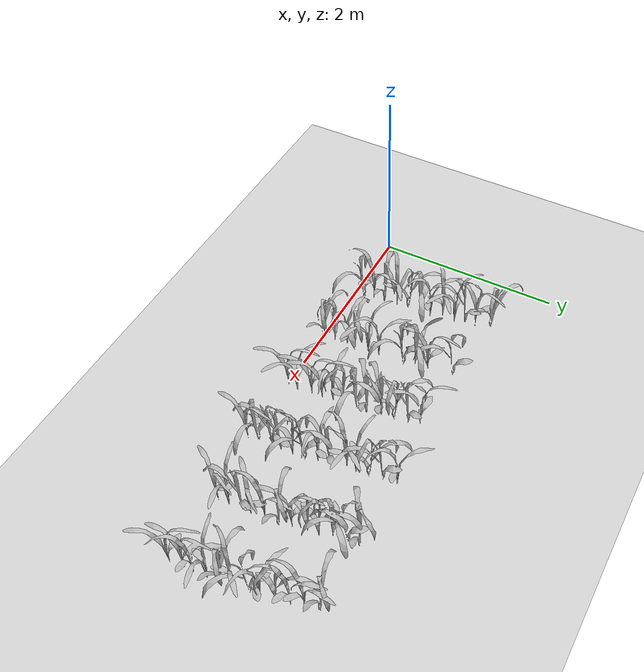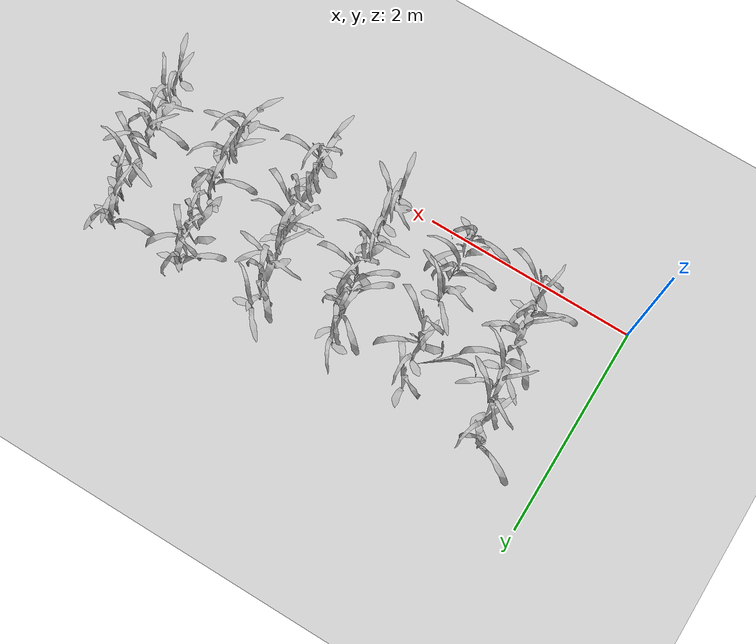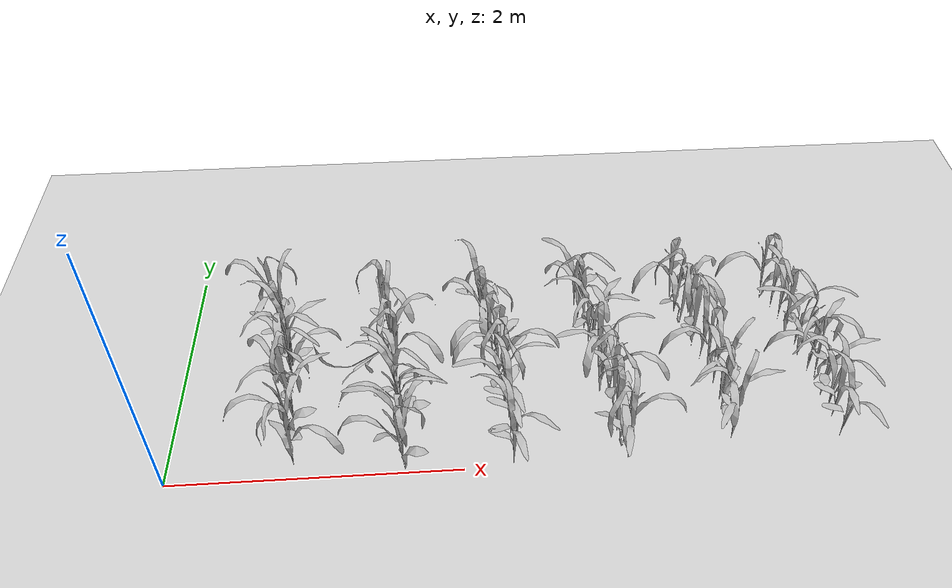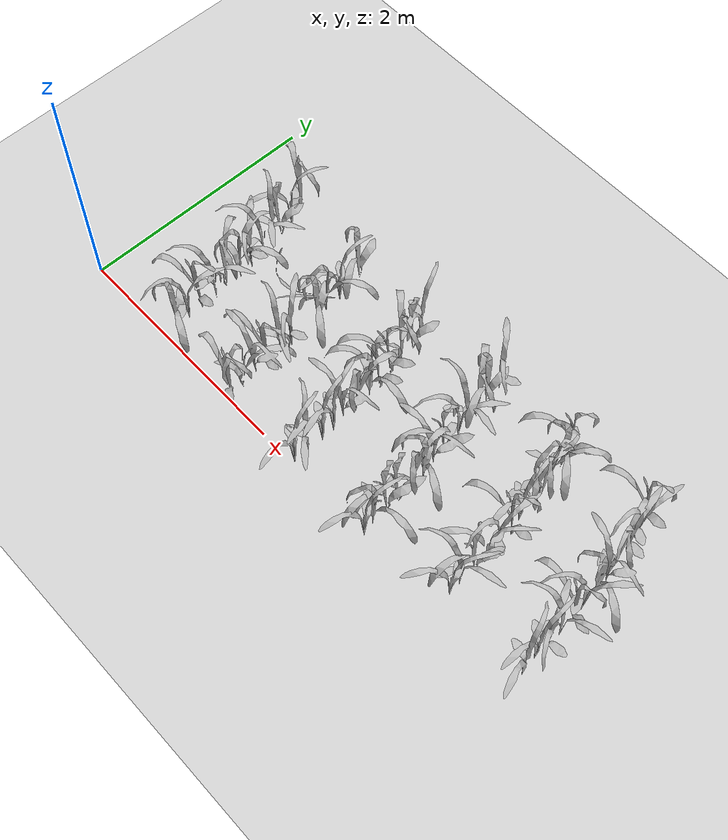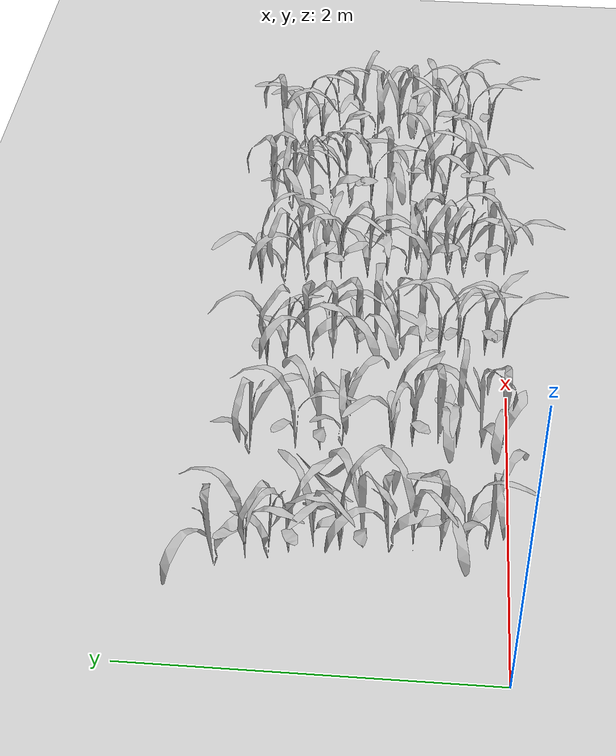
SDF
<sdf version="1.7">
 <world name="default">
  <model name="maize_01_0439">
   <pose>0.85108 0.110693 -1e-06 8.6e-05 -6e-06 0.346465</pose>
   <link name="maize_01_link">
    <inertial>
     <pose>0 0 0.01 0 -0 0</pose>
     <mass>0.3</mass>
     <inertia>
      <ixx>0.00334167</ixx>
      <ixy>0</ixy>
      <ixz>0</ixz>
      <iyy>0.00334167</iyy>
      <iyz>0</iyz>
      <izz>1.66667e-05</izz>
     </inertia>
     <pose>0 0 0.1 0 -0 0</pose>
    </inertial>
    <visual name="visual">
     <geometry>
      <mesh><uri>model://maize_01/meshes/maize_01.dae</uri><scale>0.683166 0.683166 0.683166</scale></mesh>
     </geometry>
    </visual>
   </link>
   <static>0</static>
  </model>
  <model name="maize_02_0440">
   <pose>0.831975 0.232894 -1e-06 8.6e-05 6e-06 -2.7977</pose>
   <link name="maize_02_link">
    <inertial>
     <pose>0 0 0.01 0 -0 0</pose>
     <mass>0.3</mass>
     <inertia>
      <ixx>0.00334167</ixx>
      <ixy>0</ixy>
      <ixz>0</ixz>
      <iyy>0.00334167</iyy>
      <iyz>0</iyz>
      <izz>1.66667e-05</izz>
     </inertia>
     <pose>0 0 0.1 0 -0 0</pose>
    </inertial>
    <visual name="visual">
     <geometry>
      <mesh><uri>model://maize_02/meshes/maize_02.dae</uri><scale>0.683166 0.683166 0.683166</scale></mesh>
     </geometry>
    </visual>
   </link>
   <static>0</static>
  </model>
  <model name="maize_01_0441">
   <pose>0.824122 0.368339 -0 -5e-06 -2.8e-05 -2.05895</pose>
   <link name="maize_01_link">
    <inertial>
     <pose>0 0 0.01 0 -0 0</pose>
     <mass>0.3</mass>
     <inertia>
      <ixx>0.00334167</ixx>
      <ixy>0</ixy>
      <ixz>0</ixz>
      <iyy>0.00334167</iyy>
      <iyz>0</iyz>
      <izz>1.66667e-05</izz>
     </inertia>
     <pose>0 0 0.1 0 -0 0</pose>
    </inertial>
    <visual name="visual">
     <geometry>
      <mesh><uri>model://maize_01/meshes/maize_01.dae</uri><scale>0.683166 0.683166 0.683166</scale></mesh>
     </geometry>
    </visual>
   </link>
   <static>0</static>
  </model>
  <model name="maize_02_0442">
   <pose>0.81968 0.512315 1e-06 0.000156 -3e-06 2.75109</pose>
   <link name="maize_02_link">
    <inertial>
     <pose>0 0 0.01 0 -0 0</pose>
     <mass>0.3</mass>
     <inertia>
      <ixx>0.00334167</ixx>
      <ixy>0</ixy>
      <ixz>0</ixz>
      <iyy>0.00334167</iyy>
      <iyz>0</iyz>
      <izz>1.66667e-05</izz>
     </inertia>
     <pose>0 0 0.1 0 -0 0</pose>
    </inertial>
    <visual name="visual">
     <geometry>
      <mesh><uri>model://maize_02/meshes/maize_02.dae</uri><scale>0.683166 0.683166 0.683166</scale></mesh>
     </geometry>
    </visual>
   </link>
   <static>0</static>
  </model>
  <model name="maize_01_0443">
   <pose>0.791409 0.642572 -0 -5e-06 2.8e-05 3.05494</pose>
   <link name="maize_01_link">
    <inertial>
     <pose>0 0 0.01 0 -0 0</pose>
     <mass>0.3</mass>
     <inertia>
      <ixx>0.00334167</ixx>
      <ixy>0</ixy>
      <ixz>0</ixz>
      <iyy>0.00334167</iyy>
      <iyz>0</iyz>
      <izz>1.66667e-05</izz>
     </inertia>
     <pose>0 0 0.1 0 -0 0</pose>
    </inertial>
    <visual name="visual">
     <geometry>
      <mesh><uri>model://maize_01/meshes/maize_01.dae</uri><scale>0.683166 0.683166 0.683166</scale></mesh>
     </geometry>
    </visual>
   </link>
   <static>0</static>
  </model>
  <model name="maize_01_0444">
   <pose>0.793869 0.779367 -0 6e-06 4.8e-05 1.27213</pose>
   <link name="maize_01_link">
    <inertial>
     <pose>0 0 0.01 0 -0 0</pose>
     <mass>0.3</mass>
     <inertia>
      <ixx>0.00334167</ixx>
      <ixy>0</ixy>
      <ixz>0</ixz>
      <iyy>0.00334167</iyy>
      <iyz>0</iyz>
      <izz>1.66667e-05</izz>
     </inertia>
     <pose>0 0 0.1 0 -0 0</pose>
    </inertial>
    <visual name="visual">
     <geometry>
      <mesh><uri>model://maize_01/meshes/maize_01.dae</uri><scale>0.683166 0.683166 0.683166</scale></mesh>
     </geometry>
    </visual>
   </link>
   <static>0</static>
  </model>
  <model name="maize_02_0445">
   <pose>0.785643 0.903754 -0 5e-06 2.8e-05 -1.7164</pose>
   <link name="maize_02_link">
    <inertial>
     <pose>0 0 0.01 0 -0 0</pose>
     <mass>0.3</mass>
     <inertia>
      <ixx>0.00334167</ixx>
      <ixy>0</ixy>
      <ixz>0</ixz>
      <iyy>0.00334167</iyy>
      <iyz>0</iyz>
      <izz>1.66667e-05</izz>
     </inertia>
     <pose>0 0 0.1 0 -0 0</pose>
    </inertial>
    <visual name="visual">
     <geometry>
      <mesh><uri>model://maize_02/meshes/maize_02.dae</uri><scale>0.683166 0.683166 0.683166</scale></mesh>
     </geometry>
    </visual>
   </link>
   <static>0</static>
  </model>
  <model name="maize_02_0446">
   <pose>0.771052 1.0424 1e-06 3e-06 -0.000156 2.81163</pose>
   <link name="maize_02_link">
    <inertial>
     <pose>0 0 0.01 0 -0 0</pose>
     <mass>0.3</mass>
     <inertia>
      <ixx>0.00334167</ixx>
      <ixy>0</ixy>
      <ixz>0</ixz>
      <iyy>0.00334167</iyy>
      <iyz>0</iyz>
      <izz>1.66667e-05</izz>
     </inertia>
     <pose>0 0 0.1 0 -0 0</pose>
    </inertial>
    <visual name="visual">
     <geometry>
      <mesh><uri>model://maize_02/meshes/maize_02.dae</uri><scale>0.683166 0.683166 0.683166</scale></mesh>
     </geometry>
    </visual>
   </link>
   <static>0</static>
  </model>
  <model name="maize_02_0447">
   <pose>0.744276 1.1742 -0 -5e-06 -2.8e-05 1.54238</pose>
   <link name="maize_02_link">
    <inertial>
     <pose>0 0 0.01 0 -0 0</pose>
     <mass>0.3</mass>
     <inertia>
      <ixx>0.00334167</ixx>
      <ixy>0</ixy>
      <ixz>0</ixz>
      <iyy>0.00334167</iyy>
      <iyz>0</iyz>
      <izz>1.66667e-05</izz>
     </inertia>
     <pose>0 0 0.1 0 -0 0</pose>
    </inertial>
    <visual name="visual">
     <geometry>
      <mesh><uri>model://maize_02/meshes/maize_02.dae</uri><scale>0.683166 0.683166 0.683166</scale></mesh>
     </geometry>
    </visual>
   </link>
   <static>0</static>
  </model>
  <model name="maize_01_0448">
   <pose>0.701226 1.28164 -1e-06 -6e-06 8.3e-05 -0.66469</pose>
   <link name="maize_01_link">
    <inertial>
     <pose>0 0 0.01 0 -0 0</pose>
     <mass>0.3</mass>
     <inertia>
      <ixx>0.00334167</ixx>
      <ixy>0</ixy>
      <ixz>0</ixz>
      <iyy>0.00334167</iyy>
      <iyz>0</iyz>
      <izz>1.66667e-05</izz>
     </inertia>
     <pose>0 0 0.1 0 -0 0</pose>
    </inertial>
    <visual name="visual">
     <geometry>
      <mesh><uri>model://maize_01/meshes/maize_01.dae</uri><scale>0.683166 0.683166 0.683166</scale></mesh>
     </geometry>
    </visual>
   </link>
   <static>0</static>
  </model>
  <model name="maize_02_0449">
   <pose>0.692328 1.40183 -0 -2.8e-05 -5e-06 0.265089</pose>
   <link name="maize_02_link">
    <inertial>
     <pose>0 0 0.01 0 -0 0</pose>
     <mass>0.3</mass>
     <inertia>
      <ixx>0.00334167</ixx>
      <ixy>0</ixy>
      <ixz>0</ixz>
      <iyy>0.00334167</iyy>
      <iyz>0</iyz>
      <izz>1.66667e-05</izz>
     </inertia>
     <pose>0 0 0.1 0 -0 0</pose>
    </inertial>
    <visual name="visual">
     <geometry>
      <mesh><uri>model://maize_02/meshes/maize_02.dae</uri><scale>0.683166 0.683166 0.683166</scale></mesh>
     </geometry>
    </visual>
   </link>
   <static>0</static>
  </model>
  <model name="maize_01_0450">
   <pose>0.628987 1.5631 -0 -5e-06 -2.8e-05 -2.83313</pose>
   <link name="maize_01_link">
    <inertial>
     <pose>0 0 0.01 0 -0 0</pose>
     <mass>0.3</mass>
     <inertia>
      <ixx>0.00334167</ixx>
      <ixy>0</ixy>
      <ixz>0</ixz>
      <iyy>0.00334167</iyy>
      <iyz>0</iyz>
      <izz>1.66667e-05</izz>
     </inertia>
     <pose>0 0 0.1 0 -0 0</pose>
    </inertial>
    <visual name="visual">
     <geometry>
      <mesh><uri>model://maize_01/meshes/maize_01.dae</uri><scale>0.683166 0.683166 0.683166</scale></mesh>
     </geometry>
    </visual>
   </link>
   <static>0</static>
  </model>
  <model name="maize_01_0515">
   <pose>1.60195 0.029843 1e-06 3e-06 -0.000156 -2.51522</pose>
   <link name="maize_01_link">
    <inertial>
     <pose>0 0 0.01 0 -0 0</pose>
     <mass>0.3</mass>
     <inertia>
      <ixx>0.00334167</ixx>
      <ixy>0</ixy>
      <ixz>0</ixz>
      <iyy>0.00334167</iyy>
      <iyz>0</iyz>
      <izz>1.66667e-05</izz>
     </inertia>
     <pose>0 0 0.1 0 -0 0</pose>
    </inertial>
    <visual name="visual">
     <geometry>
      <mesh><uri>model://maize_01/meshes/maize_01.dae</uri><scale>0.683166 0.683166 0.683166</scale></mesh>
     </geometry>
    </visual>
   </link>
   <static>0</static>
  </model>
  <model name="maize_01_0516">
   <pose>1.58691 0.15042 -0 5e-06 2.8e-05 1.81864</pose>
   <link name="maize_01_link">
    <inertial>
     <pose>0 0 0.01 0 -0 0</pose>
     <mass>0.3</mass>
     <inertia>
      <ixx>0.00334167</ixx>
      <ixy>0</ixy>
      <ixz>0</ixz>
      <iyy>0.00334167</iyy>
      <iyz>0</iyz>
      <izz>1.66667e-05</izz>
     </inertia>
     <pose>0 0 0.1 0 -0 0</pose>
    </inertial>
    <visual name="visual">
     <geometry>
      <mesh><uri>model://maize_01/meshes/maize_01.dae</uri><scale>0.683166 0.683166 0.683166</scale></mesh>
     </geometry>
    </visual>
   </link>
   <static>0</static>
  </model>
  <model name="maize_02_0517">
   <pose>1.56805 0.29322 -0.000245 1.4e-05 -1.2e-05 -1.06941</pose>
   <link name="maize_02_link">
    <inertial>
     <pose>0 0 0.01 0 -0 0</pose>
     <mass>0.3</mass>
     <inertia>
      <ixx>0.00334167</ixx>
      <ixy>0</ixy>
      <ixz>0</ixz>
      <iyy>0.00334167</iyy>
      <iyz>0</iyz>
      <izz>1.66667e-05</izz>
     </inertia>
     <pose>0 0 0.1 0 -0 0</pose>
    </inertial>
    <visual name="visual">
     <geometry>
      <mesh><uri>model://maize_02/meshes/maize_02.dae</uri><scale>0.683166 0.683166 0.683166</scale></mesh>
     </geometry>
    </visual>
   </link>
   <static>0</static>
  </model>
  <model name="maize_01_0518">
   <pose>1.59159 0.398926 -0 -5e-06 2.8e-05 -2.21392</pose>
   <link name="maize_01_link">
    <inertial>
     <pose>0 0 0.01 0 -0 0</pose>
     <mass>0.3</mass>
     <inertia>
      <ixx>0.00334167</ixx>
      <ixy>0</ixy>
      <ixz>0</ixz>
      <iyy>0.00334167</iyy>
      <iyz>0</iyz>
      <izz>1.66667e-05</izz>
     </inertia>
     <pose>0 0 0.1 0 -0 0</pose>
    </inertial>
    <visual name="visual">
     <geometry>
      <mesh><uri>model://maize_01/meshes/maize_01.dae</uri><scale>0.683166 0.683166 0.683166</scale></mesh>
     </geometry>
    </visual>
   </link>
   <static>0</static>
  </model>
  <model name="maize_02_0519">
   <pose>1.56412 0.542915 -0.000245 -1.4e-05 -1.2e-05 1.73902</pose>
   <link name="maize_02_link">
    <inertial>
     <pose>0 0 0.01 0 -0 0</pose>
     <mass>0.3</mass>
     <inertia>
      <ixx>0.00334167</ixx>
      <ixy>0</ixy>
      <ixz>0</ixz>
      <iyy>0.00334167</iyy>
      <iyz>0</iyz>
      <izz>1.66667e-05</izz>
     </inertia>
     <pose>0 0 0.1 0 -0 0</pose>
    </inertial>
    <visual name="visual">
     <geometry>
      <mesh><uri>model://maize_02/meshes/maize_02.dae</uri><scale>0.683166 0.683166 0.683166</scale></mesh>
     </geometry>
    </visual>
   </link>
   <static>0</static>
  </model>
  <model name="maize_02_0520">
   <pose>1.54985 0.662416 -0 6e-06 -4.8e-05 -1.82437</pose>
   <link name="maize_02_link">
    <inertial>
     <pose>0 0 0.01 0 -0 0</pose>
     <mass>0.3</mass>
     <inertia>
      <ixx>0.00334167</ixx>
      <ixy>0</ixy>
      <ixz>0</ixz>
      <iyy>0.00334167</iyy>
      <iyz>0</iyz>
      <izz>1.66667e-05</izz>
     </inertia>
     <pose>0 0 0.1 0 -0 0</pose>
    </inertial>
    <visual name="visual">
     <geometry>
      <mesh><uri>model://maize_02/meshes/maize_02.dae</uri><scale>0.683166 0.683166 0.683166</scale></mesh>
     </geometry>
    </visual>
   </link>
   <static>0</static>
  </model>
  <model name="maize_01_0521">
   <pose>1.53849 0.942681 -0.000245 -1.2e-05 1.4e-05 0.175124</pose>
   <link name="maize_01_link">
    <inertial>
     <pose>0 0 0.01 0 -0 0</pose>
     <mass>0.3</mass>
     <inertia>
      <ixx>0.00334167</ixx>
      <ixy>0</ixy>
      <ixz>0</ixz>
      <iyy>0.00334167</iyy>
      <iyz>0</iyz>
      <izz>1.66667e-05</izz>
     </inertia>
     <pose>0 0 0.1 0 -0 0</pose>
    </inertial>
    <visual name="visual">
     <geometry>
      <mesh><uri>model://maize_01/meshes/maize_01.dae</uri><scale>0.683166 0.683166 0.683166</scale></mesh>
     </geometry>
    </visual>
   </link>
   <static>0</static>
  </model>
  <model name="maize_01_0522">
   <pose>1.49417 1.0647 -1e-06 -6e-06 8.6e-05 1.37925</pose>
   <link name="maize_01_link">
    <inertial>
     <pose>0 0 0.01 0 -0 0</pose>
     <mass>0.3</mass>
     <inertia>
      <ixx>0.00334167</ixx>
      <ixy>0</ixy>
      <ixz>0</ixz>
      <iyy>0.00334167</iyy>
      <iyz>0</iyz>
      <izz>1.66667e-05</izz>
     </inertia>
     <pose>0 0 0.1 0 -0 0</pose>
    </inertial>
    <visual name="visual">
     <geometry>
      <mesh><uri>model://maize_01/meshes/maize_01.dae</uri><scale>0.683166 0.683166 0.683166</scale></mesh>
     </geometry>
    </visual>
   </link>
   <static>0</static>
  </model>
  <model name="maize_02_0523">
   <pose>1.49199 1.20867 -1e-06 8.3e-05 -6e-06 0.505577</pose>
   <link name="maize_02_link">
    <inertial>
     <pose>0 0 0.01 0 -0 0</pose>
     <mass>0.3</mass>
     <inertia>
      <ixx>0.00334167</ixx>
      <ixy>0</ixy>
      <ixz>0</ixz>
      <iyy>0.00334167</iyy>
      <iyz>0</iyz>
      <izz>1.66667e-05</izz>
     </inertia>
     <pose>0 0 0.1 0 -0 0</pose>
    </inertial>
    <visual name="visual">
     <geometry>
      <mesh><uri>model://maize_02/meshes/maize_02.dae</uri><scale>0.683166 0.683166 0.683166</scale></mesh>
     </geometry>
    </visual>
   </link>
   <static>0</static>
  </model>
  <model name="maize_02_0524">
   <pose>1.47098 1.21012 0.009953 1.5708 1.56603 -0.84424</pose>
   <link name="maize_02_link">
    <inertial>
     <pose>0 0 0.01 0 -0 0</pose>
     <mass>0.3</mass>
     <inertia>
      <ixx>0.00334167</ixx>
      <ixy>0</ixy>
      <ixz>0</ixz>
      <iyy>0.00334167</iyy>
      <iyz>0</iyz>
      <izz>1.66667e-05</izz>
     </inertia>
     <pose>0 0 0.1 0 -0 0</pose>
    </inertial>
    <visual name="visual">
     <geometry>
      <mesh><uri>model://maize_02/meshes/maize_02.dae</uri><scale>0.683166 0.683166 0.683166</scale></mesh>
     </geometry>
    </visual>
   </link>
   <static>0</static>
  </model>
  <model name="maize_01_0525">
   <pose>1.43328 1.46595 -0.000245 1.4e-05 -1.2e-05 -0.180736</pose>
   <link name="maize_01_link">
    <inertial>
     <pose>0 0 0.01 0 -0 0</pose>
     <mass>0.3</mass>
     <inertia>
      <ixx>0.00334167</ixx>
      <ixy>0</ixy>
      <ixz>0</ixz>
      <iyy>0.00334167</iyy>
      <iyz>0</iyz>
      <izz>1.66667e-05</izz>
     </inertia>
     <pose>0 0 0.1 0 -0 0</pose>
    </inertial>
    <visual name="visual">
     <geometry>
      <mesh><uri>model://maize_01/meshes/maize_01.dae</uri><scale>0.683166 0.683166 0.683166</scale></mesh>
     </geometry>
    </visual>
   </link>
   <static>0</static>
  </model>
  <model name="maize_02_0591">
   <pose>2.3335 0.017378 -0 2.8e-05 5e-06 0.799272</pose>
   <link name="maize_02_link">
    <inertial>
     <pose>0 0 0.01 0 -0 0</pose>
     <mass>0.3</mass>
     <inertia>
      <ixx>0.00334167</ixx>
      <ixy>0</ixy>
      <ixz>0</ixz>
      <iyy>0.00334167</iyy>
      <iyz>0</iyz>
      <izz>1.66667e-05</izz>
     </inertia>
     <pose>0 0 0.1 0 -0 0</pose>
    </inertial>
    <visual name="visual">
     <geometry>
      <mesh><uri>model://maize_02/meshes/maize_02.dae</uri><scale>0.683166 0.683166 0.683166</scale></mesh>
     </geometry>
    </visual>
   </link>
   <static>0</static>
  </model>
  <model name="maize_02_0592">
   <pose>2.35072 0.129755 -0.000245 -1.4e-05 1.2e-05 1.48345</pose>
   <link name="maize_02_link">
    <inertial>
     <pose>0 0 0.01 0 -0 0</pose>
     <mass>0.3</mass>
     <inertia>
      <ixx>0.00334167</ixx>
      <ixy>0</ixy>
      <ixz>0</ixz>
      <iyy>0.00334167</iyy>
      <iyz>0</iyz>
      <izz>1.66667e-05</izz>
     </inertia>
     <pose>0 0 0.1 0 -0 0</pose>
    </inertial>
    <visual name="visual">
     <geometry>
      <mesh><uri>model://maize_02/meshes/maize_02.dae</uri><scale>0.683166 0.683166 0.683166</scale></mesh>
     </geometry>
    </visual>
   </link>
   <static>0</static>
  </model>
  <model name="maize_02_0593">
   <pose>2.33078 0.291646 -0 -5e-06 -2.8e-05 0.745549</pose>
   <link name="maize_02_link">
    <inertial>
     <pose>0 0 0.01 0 -0 0</pose>
     <mass>0.3</mass>
     <inertia>
      <ixx>0.00334167</ixx>
      <ixy>0</ixy>
      <ixz>0</ixz>
      <iyy>0.00334167</iyy>
      <iyz>0</iyz>
      <izz>1.66667e-05</izz>
     </inertia>
     <pose>0 0 0.1 0 -0 0</pose>
    </inertial>
    <visual name="visual">
     <geometry>
      <mesh><uri>model://maize_02/meshes/maize_02.dae</uri><scale>0.683166 0.683166 0.683166</scale></mesh>
     </geometry>
    </visual>
   </link>
   <static>0</static>
  </model>
  <model name="maize_02_0594">
   <pose>2.32366 0.407148 -1e-06 6e-06 7.9e-05 0.853678</pose>
   <link name="maize_02_link">
    <inertial>
     <pose>0 0 0.01 0 -0 0</pose>
     <mass>0.3</mass>
     <inertia>
      <ixx>0.00334167</ixx>
      <ixy>0</ixy>
      <ixz>0</ixz>
      <iyy>0.00334167</iyy>
      <iyz>0</iyz>
      <izz>1.66667e-05</izz>
     </inertia>
     <pose>0 0 0.1 0 -0 0</pose>
    </inertial>
    <visual name="visual">
     <geometry>
      <mesh><uri>model://maize_02/meshes/maize_02.dae</uri><scale>0.683166 0.683166 0.683166</scale></mesh>
     </geometry>
    </visual>
   </link>
   <static>0</static>
  </model>
  <model name="maize_02_0595">
   <pose>2.30378 0.525898 -0 -5e-06 2.8e-05 -0.918349</pose>
   <link name="maize_02_link">
    <inertial>
     <pose>0 0 0.01 0 -0 0</pose>
     <mass>0.3</mass>
     <inertia>
      <ixx>0.00334167</ixx>
      <ixy>0</ixy>
      <ixz>0</ixz>
      <iyy>0.00334167</iyy>
      <iyz>0</iyz>
      <izz>1.66667e-05</izz>
     </inertia>
     <pose>0 0 0.1 0 -0 0</pose>
    </inertial>
    <visual name="visual">
     <geometry>
      <mesh><uri>model://maize_02/meshes/maize_02.dae</uri><scale>0.683166 0.683166 0.683166</scale></mesh>
     </geometry>
    </visual>
   </link>
   <static>0</static>
  </model>
  <model name="maize_01_0596">
   <pose>2.31384 0.642553 -0 5e-06 -2.8e-05 2.33779</pose>
   <link name="maize_01_link">
    <inertial>
     <pose>0 0 0.01 0 -0 0</pose>
     <mass>0.3</mass>
     <inertia>
      <ixx>0.00334167</ixx>
      <ixy>0</ixy>
      <ixz>0</ixz>
      <iyy>0.00334167</iyy>
      <iyz>0</iyz>
      <izz>1.66667e-05</izz>
     </inertia>
     <pose>0 0 0.1 0 -0 0</pose>
    </inertial>
    <visual name="visual">
     <geometry>
      <mesh><uri>model://maize_01/meshes/maize_01.dae</uri><scale>0.683166 0.683166 0.683166</scale></mesh>
     </geometry>
    </visual>
   </link>
   <static>0</static>
  </model>
  <model name="maize_01_0597">
   <pose>2.29156 0.792547 -0 2.8e-05 -5e-06 0.780708</pose>
   <link name="maize_01_link">
    <inertial>
     <pose>0 0 0.01 0 -0 0</pose>
     <mass>0.3</mass>
     <inertia>
      <ixx>0.00334167</ixx>
      <ixy>0</ixy>
      <ixz>0</ixz>
      <iyy>0.00334167</iyy>
      <iyz>0</iyz>
      <izz>1.66667e-05</izz>
     </inertia>
     <pose>0 0 0.1 0 -0 0</pose>
    </inertial>
    <visual name="visual">
     <geometry>
      <mesh><uri>model://maize_01/meshes/maize_01.dae</uri><scale>0.683166 0.683166 0.683166</scale></mesh>
     </geometry>
    </visual>
   </link>
   <static>0</static>
  </model>
  <model name="maize_01_0598">
   <pose>2.28657 0.908987 1e-06 3e-06 0.000156 -1.7225</pose>
   <link name="maize_01_link">
    <inertial>
     <pose>0 0 0.01 0 -0 0</pose>
     <mass>0.3</mass>
     <inertia>
      <ixx>0.00334167</ixx>
      <ixy>0</ixy>
      <ixz>0</ixz>
      <iyy>0.00334167</iyy>
      <iyz>0</iyz>
      <izz>1.66667e-05</izz>
     </inertia>
     <pose>0 0 0.1 0 -0 0</pose>
    </inertial>
    <visual name="visual">
     <geometry>
      <mesh><uri>model://maize_01/meshes/maize_01.dae</uri><scale>0.683166 0.683166 0.683166</scale></mesh>
     </geometry>
    </visual>
   </link>
   <static>0</static>
  </model>
  <model name="maize_01_0599">
   <pose>2.2461 1.05411 -1e-06 -8.9e-05 -6e-06 -1.60535</pose>
   <link name="maize_01_link">
    <inertial>
     <pose>0 0 0.01 0 -0 0</pose>
     <mass>0.3</mass>
     <inertia>
      <ixx>0.00334167</ixx>
      <ixy>0</ixy>
      <ixz>0</ixz>
      <iyy>0.00334167</iyy>
      <iyz>0</iyz>
      <izz>1.66667e-05</izz>
     </inertia>
     <pose>0 0 0.1 0 -0 0</pose>
    </inertial>
    <visual name="visual">
     <geometry>
      <mesh><uri>model://maize_01/meshes/maize_01.dae</uri><scale>0.683166 0.683166 0.683166</scale></mesh>
     </geometry>
    </visual>
   </link>
   <static>0</static>
  </model>
  <model name="maize_01_0600">
   <pose>2.22555 1.18774 -1e-06 -8.3e-05 -6e-06 -3.04623</pose>
   <link name="maize_01_link">
    <inertial>
     <pose>0 0 0.01 0 -0 0</pose>
     <mass>0.3</mass>
     <inertia>
      <ixx>0.00334167</ixx>
      <ixy>0</ixy>
      <ixz>0</ixz>
      <iyy>0.00334167</iyy>
      <iyz>0</iyz>
      <izz>1.66667e-05</izz>
     </inertia>
     <pose>0 0 0.1 0 -0 0</pose>
    </inertial>
    <visual name="visual">
     <geometry>
      <mesh><uri>model://maize_01/meshes/maize_01.dae</uri><scale>0.683166 0.683166 0.683166</scale></mesh>
     </geometry>
    </visual>
   </link>
   <static>0</static>
  </model>
  <model name="maize_01_0601">
   <pose>2.19942 1.329 1e-06 3e-06 -0.000156 -0.821077</pose>
   <link name="maize_01_link">
    <inertial>
     <pose>0 0 0.01 0 -0 0</pose>
     <mass>0.3</mass>
     <inertia>
      <ixx>0.00334167</ixx>
      <ixy>0</ixy>
      <ixz>0</ixz>
      <iyy>0.00334167</iyy>
      <iyz>0</iyz>
      <izz>1.66667e-05</izz>
     </inertia>
     <pose>0 0 0.1 0 -0 0</pose>
    </inertial>
    <visual name="visual">
     <geometry>
      <mesh><uri>model://maize_01/meshes/maize_01.dae</uri><scale>0.683166 0.683166 0.683166</scale></mesh>
     </geometry>
    </visual>
   </link>
   <static>0</static>
  </model>
  <model name="maize_02_0602">
   <pose>2.16471 1.44372 -0 -2.8e-05 5e-06 0.994123</pose>
   <link name="maize_02_link">
    <inertial>
     <pose>0 0 0.01 0 -0 0</pose>
     <mass>0.3</mass>
     <inertia>
      <ixx>0.00334167</ixx>
      <ixy>0</ixy>
      <ixz>0</ixz>
      <iyy>0.00334167</iyy>
      <iyz>0</iyz>
      <izz>1.66667e-05</izz>
     </inertia>
     <pose>0 0 0.1 0 -0 0</pose>
    </inertial>
    <visual name="visual">
     <geometry>
      <mesh><uri>model://maize_02/meshes/maize_02.dae</uri><scale>0.683166 0.683166 0.683166</scale></mesh>
     </geometry>
    </visual>
   </link>
   <static>0</static>
  </model>
  <model name="maize_02_0668">
   <pose>3.10655 0.005593 -0 5e-06 2.8e-05 0.400536</pose>
   <link name="maize_02_link">
    <inertial>
     <pose>0 0 0.01 0 -0 0</pose>
     <mass>0.3</mass>
     <inertia>
      <ixx>0.00334167</ixx>
      <ixy>0</ixy>
      <ixz>0</ixz>
      <iyy>0.00334167</iyy>
      <iyz>0</iyz>
      <izz>1.66667e-05</izz>
     </inertia>
     <pose>0 0 0.1 0 -0 0</pose>
    </inertial>
    <visual name="visual">
     <geometry>
      <mesh><uri>model://maize_02/meshes/maize_02.dae</uri><scale>0.683166 0.683166 0.683166</scale></mesh>
     </geometry>
    </visual>
   </link>
   <static>0</static>
  </model>
  <model name="maize_01_0669">
   <pose>3.08192 0.109483 -1e-06 6e-06 8.9e-05 0.847292</pose>
   <link name="maize_01_link">
    <inertial>
     <pose>0 0 0.01 0 -0 0</pose>
     <mass>0.3</mass>
     <inertia>
      <ixx>0.00334167</ixx>
      <ixy>0</ixy>
      <ixz>0</ixz>
      <iyy>0.00334167</iyy>
      <iyz>0</iyz>
      <izz>1.66667e-05</izz>
     </inertia>
     <pose>0 0 0.1 0 -0 0</pose>
    </inertial>
    <visual name="visual">
     <geometry>
      <mesh><uri>model://maize_01/meshes/maize_01.dae</uri><scale>0.683166 0.683166 0.683166</scale></mesh>
     </geometry>
    </visual>
   </link>
   <static>0</static>
  </model>
  <model name="maize_01_0670">
   <pose>3.06593 0.262782 -1e-06 -6e-06 -8.9e-05 -0.800145</pose>
   <link name="maize_01_link">
    <inertial>
     <pose>0 0 0.01 0 -0 0</pose>
     <mass>0.3</mass>
     <inertia>
      <ixx>0.00334167</ixx>
      <ixy>0</ixy>
      <ixz>0</ixz>
      <iyy>0.00334167</iyy>
      <iyz>0</iyz>
      <izz>1.66667e-05</izz>
     </inertia>
     <pose>0 0 0.1 0 -0 0</pose>
    </inertial>
    <visual name="visual">
     <geometry>
      <mesh><uri>model://maize_01/meshes/maize_01.dae</uri><scale>0.683166 0.683166 0.683166</scale></mesh>
     </geometry>
    </visual>
   </link>
   <static>0</static>
  </model>
  <model name="maize_01_0671">
   <pose>3.07394 0.364664 -0.000245 1.4e-05 -1.2e-05 -0.827107</pose>
   <link name="maize_01_link">
    <inertial>
     <pose>0 0 0.01 0 -0 0</pose>
     <mass>0.3</mass>
     <inertia>
      <ixx>0.00334167</ixx>
      <ixy>0</ixy>
      <ixz>0</ixz>
      <iyy>0.00334167</iyy>
      <iyz>0</iyz>
      <izz>1.66667e-05</izz>
     </inertia>
     <pose>0 0 0.1 0 -0 0</pose>
    </inertial>
    <visual name="visual">
     <geometry>
      <mesh><uri>model://maize_01/meshes/maize_01.dae</uri><scale>0.683166 0.683166 0.683166</scale></mesh>
     </geometry>
    </visual>
   </link>
   <static>0</static>
  </model>
  <model name="maize_01_0672">
   <pose>3.0756 0.501005 -0 -5e-06 2.8e-05 2.48287</pose>
   <link name="maize_01_link">
    <inertial>
     <pose>0 0 0.01 0 -0 0</pose>
     <mass>0.3</mass>
     <inertia>
      <ixx>0.00334167</ixx>
      <ixy>0</ixy>
      <ixz>0</ixz>
      <iyy>0.00334167</iyy>
      <iyz>0</iyz>
      <izz>1.66667e-05</izz>
     </inertia>
     <pose>0 0 0.1 0 -0 0</pose>
    </inertial>
    <visual name="visual">
     <geometry>
      <mesh><uri>model://maize_01/meshes/maize_01.dae</uri><scale>0.683166 0.683166 0.683166</scale></mesh>
     </geometry>
    </visual>
   </link>
   <static>0</static>
  </model>
  <model name="maize_01_0673">
   <pose>3.06005 0.623366 -0 5e-06 -2.8e-05 0.292372</pose>
   <link name="maize_01_link">
    <inertial>
     <pose>0 0 0.01 0 -0 0</pose>
     <mass>0.3</mass>
     <inertia>
      <ixx>0.00334167</ixx>
      <ixy>0</ixy>
      <ixz>0</ixz>
      <iyy>0.00334167</iyy>
      <iyz>0</iyz>
      <izz>1.66667e-05</izz>
     </inertia>
     <pose>0 0 0.1 0 -0 0</pose>
    </inertial>
    <visual name="visual">
     <geometry>
      <mesh><uri>model://maize_01/meshes/maize_01.dae</uri><scale>0.683166 0.683166 0.683166</scale></mesh>
     </geometry>
    </visual>
   </link>
   <static>0</static>
  </model>
  <model name="maize_02_0674">
   <pose>3.02727 0.760084 -0.000245 -1.2e-05 -1.4e-05 -0.916133</pose>
   <link name="maize_02_link">
    <inertial>
     <pose>0 0 0.01 0 -0 0</pose>
     <mass>0.3</mass>
     <inertia>
      <ixx>0.00334167</ixx>
      <ixy>0</ixy>
      <ixz>0</ixz>
      <iyy>0.00334167</iyy>
      <iyz>0</iyz>
      <izz>1.66667e-05</izz>
     </inertia>
     <pose>0 0 0.1 0 -0 0</pose>
    </inertial>
    <visual name="visual">
     <geometry>
      <mesh><uri>model://maize_02/meshes/maize_02.dae</uri><scale>0.683166 0.683166 0.683166</scale></mesh>
     </geometry>
    </visual>
   </link>
   <static>0</static>
  </model>
  <model name="maize_01_0675">
   <pose>3.01361 0.884304 -0 -2.8e-05 -5e-06 -1.15567</pose>
   <link name="maize_01_link">
    <inertial>
     <pose>0 0 0.01 0 -0 0</pose>
     <mass>0.3</mass>
     <inertia>
      <ixx>0.00334167</ixx>
      <ixy>0</ixy>
      <ixz>0</ixz>
      <iyy>0.00334167</iyy>
      <iyz>0</iyz>
      <izz>1.66667e-05</izz>
     </inertia>
     <pose>0 0 0.1 0 -0 0</pose>
    </inertial>
    <visual name="visual">
     <geometry>
      <mesh><uri>model://maize_01/meshes/maize_01.dae</uri><scale>0.683166 0.683166 0.683166</scale></mesh>
     </geometry>
    </visual>
   </link>
   <static>0</static>
  </model>
  <model name="maize_02_0676">
   <pose>2.98609 1.0539 -0 2.8e-05 5e-06 3.07623</pose>
   <link name="maize_02_link">
    <inertial>
     <pose>0 0 0.01 0 -0 0</pose>
     <mass>0.3</mass>
     <inertia>
      <ixx>0.00334167</ixx>
      <ixy>0</ixy>
      <ixz>0</ixz>
      <iyy>0.00334167</iyy>
      <iyz>0</iyz>
      <izz>1.66667e-05</izz>
     </inertia>
     <pose>0 0 0.1 0 -0 0</pose>
    </inertial>
    <visual name="visual">
     <geometry>
      <mesh><uri>model://maize_02/meshes/maize_02.dae</uri><scale>0.683166 0.683166 0.683166</scale></mesh>
     </geometry>
    </visual>
   </link>
   <static>0</static>
  </model>
  <model name="maize_02_0677">
   <pose>2.97068 1.14716 -0.000245 1.4e-05 1.2e-05 1.97581</pose>
   <link name="maize_02_link">
    <inertial>
     <pose>0 0 0.01 0 -0 0</pose>
     <mass>0.3</mass>
     <inertia>
      <ixx>0.00334167</ixx>
      <ixy>0</ixy>
      <ixz>0</ixz>
      <iyy>0.00334167</iyy>
      <iyz>0</iyz>
      <izz>1.66667e-05</izz>
     </inertia>
     <pose>0 0 0.1 0 -0 0</pose>
    </inertial>
    <visual name="visual">
     <geometry>
      <mesh><uri>model://maize_02/meshes/maize_02.dae</uri><scale>0.683166 0.683166 0.683166</scale></mesh>
     </geometry>
    </visual>
   </link>
   <static>0</static>
  </model>
  <model name="maize_01_0678">
   <pose>2.95283 1.28192 -0.000245 1.4e-05 1.2e-05 3.04539</pose>
   <link name="maize_01_link">
    <inertial>
     <pose>0 0 0.01 0 -0 0</pose>
     <mass>0.3</mass>
     <inertia>
      <ixx>0.00334167</ixx>
      <ixy>0</ixy>
      <ixz>0</ixz>
      <iyy>0.00334167</iyy>
      <iyz>0</iyz>
      <izz>1.66667e-05</izz>
     </inertia>
     <pose>0 0 0.1 0 -0 0</pose>
    </inertial>
    <visual name="visual">
     <geometry>
      <mesh><uri>model://maize_01/meshes/maize_01.dae</uri><scale>0.683166 0.683166 0.683166</scale></mesh>
     </geometry>
    </visual>
   </link>
   <static>0</static>
  </model>
  <model name="maize_01_0679">
   <pose>2.91822 1.41047 -0 5e-06 -2.8e-05 -0.377508</pose>
   <link name="maize_01_link">
    <inertial>
     <pose>0 0 0.01 0 -0 0</pose>
     <mass>0.3</mass>
     <inertia>
      <ixx>0.00334167</ixx>
      <ixy>0</ixy>
      <ixz>0</ixz>
      <iyy>0.00334167</iyy>
      <iyz>0</iyz>
      <izz>1.66667e-05</izz>
     </inertia>
     <pose>0 0 0.1 0 -0 0</pose>
    </inertial>
    <visual name="visual">
     <geometry>
      <mesh><uri>model://maize_01/meshes/maize_01.dae</uri><scale>0.683166 0.683166 0.683166</scale></mesh>
     </geometry>
    </visual>
   </link>
   <static>0</static>
  </model>
  <model name="maize_02_0680">
   <pose>2.90759 1.56159 -0 4.8e-05 6e-06 -1.80269</pose>
   <link name="maize_02_link">
    <inertial>
     <pose>0 0 0.01 0 -0 0</pose>
     <mass>0.3</mass>
     <inertia>
      <ixx>0.00334167</ixx>
      <ixy>0</ixy>
      <ixz>0</ixz>
      <iyy>0.00334167</iyy>
      <iyz>0</iyz>
      <izz>1.66667e-05</izz>
     </inertia>
     <pose>0 0 0.1 0 -0 0</pose>
    </inertial>
    <visual name="visual">
     <geometry>
      <mesh><uri>model://maize_02/meshes/maize_02.dae</uri><scale>0.683166 0.683166 0.683166</scale></mesh>
     </geometry>
    </visual>
   </link>
   <static>0</static>
  </model>
  <model name="maize_02_0746">
   <pose>3.84574 0.140888 -0 -2.8e-05 5e-06 0.039433</pose>
   <link name="maize_02_link">
    <inertial>
     <pose>0 0 0.01 0 -0 0</pose>
     <mass>0.3</mass>
     <inertia>
      <ixx>0.00334167</ixx>
      <ixy>0</ixy>
      <ixz>0</ixz>
      <iyy>0.00334167</iyy>
      <iyz>0</iyz>
      <izz>1.66667e-05</izz>
     </inertia>
     <pose>0 0 0.1 0 -0 0</pose>
    </inertial>
    <visual name="visual">
     <geometry>
      <mesh><uri>model://maize_02/meshes/maize_02.dae</uri><scale>0.683166 0.683166 0.683166</scale></mesh>
     </geometry>
    </visual>
   </link>
   <static>0</static>
  </model>
  <model name="maize_02_0747">
   <pose>3.83582 0.248619 -0 -5e-06 -2.8e-05 2.37457</pose>
   <link name="maize_02_link">
    <inertial>
     <pose>0 0 0.01 0 -0 0</pose>
     <mass>0.3</mass>
     <inertia>
      <ixx>0.00334167</ixx>
      <ixy>0</ixy>
      <ixz>0</ixz>
      <iyy>0.00334167</iyy>
      <iyz>0</iyz>
      <izz>1.66667e-05</izz>
     </inertia>
     <pose>0 0 0.1 0 -0 0</pose>
    </inertial>
    <visual name="visual">
     <geometry>
      <mesh><uri>model://maize_02/meshes/maize_02.dae</uri><scale>0.683166 0.683166 0.683166</scale></mesh>
     </geometry>
    </visual>
   </link>
   <static>0</static>
  </model>
  <model name="maize_01_0748">
   <pose>3.82641 0.400433 -0 -2.8e-05 5e-06 -0.891379</pose>
   <link name="maize_01_link">
    <inertial>
     <pose>0 0 0.01 0 -0 0</pose>
     <mass>0.3</mass>
     <inertia>
      <ixx>0.00334167</ixx>
      <ixy>0</ixy>
      <ixz>0</ixz>
      <iyy>0.00334167</iyy>
      <iyz>0</iyz>
      <izz>1.66667e-05</izz>
     </inertia>
     <pose>0 0 0.1 0 -0 0</pose>
    </inertial>
    <visual name="visual">
     <geometry>
      <mesh><uri>model://maize_01/meshes/maize_01.dae</uri><scale>0.683166 0.683166 0.683166</scale></mesh>
     </geometry>
    </visual>
   </link>
   <static>0</static>
  </model>
  <model name="maize_02_0749">
   <pose>3.83658 0.497131 -0 5e-06 -2.8e-05 -0.208222</pose>
   <link name="maize_02_link">
    <inertial>
     <pose>0 0 0.01 0 -0 0</pose>
     <mass>0.3</mass>
     <inertia>
      <ixx>0.00334167</ixx>
      <ixy>0</ixy>
      <ixz>0</ixz>
      <iyy>0.00334167</iyy>
      <iyz>0</iyz>
      <izz>1.66667e-05</izz>
     </inertia>
     <pose>0 0 0.1 0 -0 0</pose>
    </inertial>
    <visual name="visual">
     <geometry>
      <mesh><uri>model://maize_02/meshes/maize_02.dae</uri><scale>0.683166 0.683166 0.683166</scale></mesh>
     </geometry>
    </visual>
   </link>
   <static>0</static>
  </model>
  <model name="maize_02_0750">
   <pose>3.81905 0.638786 1e-06 3e-06 -0.000156 -2.62243</pose>
   <link name="maize_02_link">
    <inertial>
     <pose>0 0 0.01 0 -0 0</pose>
     <mass>0.3</mass>
     <inertia>
      <ixx>0.00334167</ixx>
      <ixy>0</ixy>
      <ixz>0</ixz>
      <iyy>0.00334167</iyy>
      <iyz>0</iyz>
      <izz>1.66667e-05</izz>
     </inertia>
     <pose>0 0 0.1 0 -0 0</pose>
    </inertial>
    <visual name="visual">
     <geometry>
      <mesh><uri>model://maize_02/meshes/maize_02.dae</uri><scale>0.683166 0.683166 0.683166</scale></mesh>
     </geometry>
    </visual>
   </link>
   <static>0</static>
  </model>
  <model name="maize_01_0751">
   <pose>3.80961 0.788836 -0 2.8e-05 -5e-06 -2.10392</pose>
   <link name="maize_01_link">
    <inertial>
     <pose>0 0 0.01 0 -0 0</pose>
     <mass>0.3</mass>
     <inertia>
      <ixx>0.00334167</ixx>
      <ixy>0</ixy>
      <ixz>0</ixz>
      <iyy>0.00334167</iyy>
      <iyz>0</iyz>
      <izz>1.66667e-05</izz>
     </inertia>
     <pose>0 0 0.1 0 -0 0</pose>
    </inertial>
    <visual name="visual">
     <geometry>
      <mesh><uri>model://maize_01/meshes/maize_01.dae</uri><scale>0.683166 0.683166 0.683166</scale></mesh>
     </geometry>
    </visual>
   </link>
   <static>0</static>
  </model>
  <model name="maize_02_0752">
   <pose>3.77233 0.90307 -0 -2.8e-05 5e-06 0.668613</pose>
   <link name="maize_02_link">
    <inertial>
     <pose>0 0 0.01 0 -0 0</pose>
     <mass>0.3</mass>
     <inertia>
      <ixx>0.00334167</ixx>
      <ixy>0</ixy>
      <ixz>0</ixz>
      <iyy>0.00334167</iyy>
      <iyz>0</iyz>
      <izz>1.66667e-05</izz>
     </inertia>
     <pose>0 0 0.1 0 -0 0</pose>
    </inertial>
    <visual name="visual">
     <geometry>
      <mesh><uri>model://maize_02/meshes/maize_02.dae</uri><scale>0.683166 0.683166 0.683166</scale></mesh>
     </geometry>
    </visual>
   </link>
   <static>0</static>
  </model>
  <model name="maize_01_0753">
   <pose>3.74181 1.0499 -1e-06 8.9e-05 6e-06 2.39209</pose>
   <link name="maize_01_link">
    <inertial>
     <pose>0 0 0.01 0 -0 0</pose>
     <mass>0.3</mass>
     <inertia>
      <ixx>0.00334167</ixx>
      <ixy>0</ixy>
      <ixz>0</ixz>
      <iyy>0.00334167</iyy>
      <iyz>0</iyz>
      <izz>1.66667e-05</izz>
     </inertia>
     <pose>0 0 0.1 0 -0 0</pose>
    </inertial>
    <visual name="visual">
     <geometry>
      <mesh><uri>model://maize_01/meshes/maize_01.dae</uri><scale>0.683166 0.683166 0.683166</scale></mesh>
     </geometry>
    </visual>
   </link>
   <static>0</static>
  </model>
  <model name="maize_01_0754">
   <pose>3.74006 1.17064 -0 -5e-06 2.8e-05 2.53974</pose>
   <link name="maize_01_link">
    <inertial>
     <pose>0 0 0.01 0 -0 0</pose>
     <mass>0.3</mass>
     <inertia>
      <ixx>0.00334167</ixx>
      <ixy>0</ixy>
      <ixz>0</ixz>
      <iyy>0.00334167</iyy>
      <iyz>0</iyz>
      <izz>1.66667e-05</izz>
     </inertia>
     <pose>0 0 0.1 0 -0 0</pose>
    </inertial>
    <visual name="visual">
     <geometry>
      <mesh><uri>model://maize_01/meshes/maize_01.dae</uri><scale>0.683166 0.683166 0.683166</scale></mesh>
     </geometry>
    </visual>
   </link>
   <static>0</static>
  </model>
  <model name="maize_01_0755">
   <pose>3.69207 1.29049 -1e-06 6e-06 8.9e-05 1.5965</pose>
   <link name="maize_01_link">
    <inertial>
     <pose>0 0 0.01 0 -0 0</pose>
     <mass>0.3</mass>
     <inertia>
      <ixx>0.00334167</ixx>
      <ixy>0</ixy>
      <ixz>0</ixz>
      <iyy>0.00334167</iyy>
      <iyz>0</iyz>
      <izz>1.66667e-05</izz>
     </inertia>
     <pose>0 0 0.1 0 -0 0</pose>
    </inertial>
    <visual name="visual">
     <geometry>
      <mesh><uri>model://maize_01/meshes/maize_01.dae</uri><scale>0.683166 0.683166 0.683166</scale></mesh>
     </geometry>
    </visual>
   </link>
   <static>0</static>
  </model>
  <model name="maize_01_0756">
   <pose>3.67462 1.43451 -1e-06 -8.9e-05 6e-06 -0.041163</pose>
   <link name="maize_01_link">
    <inertial>
     <pose>0 0 0.01 0 -0 0</pose>
     <mass>0.3</mass>
     <inertia>
      <ixx>0.00334167</ixx>
      <ixy>0</ixy>
      <ixz>0</ixz>
      <iyy>0.00334167</iyy>
      <iyz>0</iyz>
      <izz>1.66667e-05</izz>
     </inertia>
     <pose>0 0 0.1 0 -0 0</pose>
    </inertial>
    <visual name="visual">
     <geometry>
      <mesh><uri>model://maize_01/meshes/maize_01.dae</uri><scale>0.683166 0.683166 0.683166</scale></mesh>
     </geometry>
    </visual>
   </link>
   <static>0</static>
  </model>
  <model name="maize_01_0757">
   <pose>3.65901 1.55868 -0 -5e-06 2.8e-05 -1.77746</pose>
   <link name="maize_01_link">
    <inertial>
     <pose>0 0 0.01 0 -0 0</pose>
     <mass>0.3</mass>
     <inertia>
      <ixx>0.00334167</ixx>
      <ixy>0</ixy>
      <ixz>0</ixz>
      <iyy>0.00334167</iyy>
      <iyz>0</iyz>
      <izz>1.66667e-05</izz>
     </inertia>
     <pose>0 0 0.1 0 -0 0</pose>
    </inertial>
    <visual name="visual">
     <geometry>
      <mesh><uri>model://maize_01/meshes/maize_01.dae</uri><scale>0.683166 0.683166 0.683166</scale></mesh>
     </geometry>
    </visual>
   </link>
   <static>0</static>
  </model>
  <model name="maize_02_0823">
   <pose>4.59691 0.104812 -0.000245 1.2e-05 1.4e-05 0.944274</pose>
   <link name="maize_02_link">
    <inertial>
     <pose>0 0 0.01 0 -0 0</pose>
     <mass>0.3</mass>
     <inertia>
      <ixx>0.00334167</ixx>
      <ixy>0</ixy>
      <ixz>0</ixz>
      <iyy>0.00334167</iyy>
      <iyz>0</iyz>
      <izz>1.66667e-05</izz>
     </inertia>
     <pose>0 0 0.1 0 -0 0</pose>
    </inertial>
    <visual name="visual">
     <geometry>
      <mesh><uri>model://maize_02/meshes/maize_02.dae</uri><scale>0.683166 0.683166 0.683166</scale></mesh>
     </geometry>
    </visual>
   </link>
   <static>0</static>
  </model>
  <model name="maize_02_0824">
   <pose>4.5727 0.249455 -0 5e-06 -2.8e-05 0.580799</pose>
   <link name="maize_02_link">
    <inertial>
     <pose>0 0 0.01 0 -0 0</pose>
     <mass>0.3</mass>
     <inertia>
      <ixx>0.00334167</ixx>
      <ixy>0</ixy>
      <ixz>0</ixz>
      <iyy>0.00334167</iyy>
      <iyz>0</iyz>
      <izz>1.66667e-05</izz>
     </inertia>
     <pose>0 0 0.1 0 -0 0</pose>
    </inertial>
    <visual name="visual">
     <geometry>
      <mesh><uri>model://maize_02/meshes/maize_02.dae</uri><scale>0.683166 0.683166 0.683166</scale></mesh>
     </geometry>
    </visual>
   </link>
   <static>0</static>
  </model>
  <model name="maize_02_0825">
   <pose>4.5822 0.354319 1e-06 3e-06 -0.000156 -2.07027</pose>
   <link name="maize_02_link">
    <inertial>
     <pose>0 0 0.01 0 -0 0</pose>
     <mass>0.3</mass>
     <inertia>
      <ixx>0.00334167</ixx>
      <ixy>0</ixy>
      <ixz>0</ixz>
      <iyy>0.00334167</iyy>
      <iyz>0</iyz>
      <izz>1.66667e-05</izz>
     </inertia>
     <pose>0 0 0.1 0 -0 0</pose>
    </inertial>
    <visual name="visual">
     <geometry>
      <mesh><uri>model://maize_02/meshes/maize_02.dae</uri><scale>0.683166 0.683166 0.683166</scale></mesh>
     </geometry>
    </visual>
   </link>
   <static>0</static>
  </model>
  <model name="maize_02_0826">
   <pose>4.57158 0.491895 -0.000245 -1.4e-05 1.2e-05 2.39106</pose>
   <link name="maize_02_link">
    <inertial>
     <pose>0 0 0.01 0 -0 0</pose>
     <mass>0.3</mass>
     <inertia>
      <ixx>0.00334167</ixx>
      <ixy>0</ixy>
      <ixz>0</ixz>
      <iyy>0.00334167</iyy>
      <iyz>0</iyz>
      <izz>1.66667e-05</izz>
     </inertia>
     <pose>0 0 0.1 0 -0 0</pose>
    </inertial>
    <visual name="visual">
     <geometry>
      <mesh><uri>model://maize_02/meshes/maize_02.dae</uri><scale>0.683166 0.683166 0.683166</scale></mesh>
     </geometry>
    </visual>
   </link>
   <static>0</static>
  </model>
  <model name="maize_01_0827">
   <pose>4.56348 0.63989 -0 5e-06 2.8e-05 -2.39339</pose>
   <link name="maize_01_link">
    <inertial>
     <pose>0 0 0.01 0 -0 0</pose>
     <mass>0.3</mass>
     <inertia>
      <ixx>0.00334167</ixx>
      <ixy>0</ixy>
      <ixz>0</ixz>
      <iyy>0.00334167</iyy>
      <iyz>0</iyz>
      <izz>1.66667e-05</izz>
     </inertia>
     <pose>0 0 0.1 0 -0 0</pose>
    </inertial>
    <visual name="visual">
     <geometry>
      <mesh><uri>model://maize_01/meshes/maize_01.dae</uri><scale>0.683166 0.683166 0.683166</scale></mesh>
     </geometry>
    </visual>
   </link>
   <static>0</static>
  </model>
  <model name="maize_02_0828">
   <pose>4.54348 0.745906 -1e-06 -8.6e-05 6e-06 2.98977</pose>
   <link name="maize_02_link">
    <inertial>
     <pose>0 0 0.01 0 -0 0</pose>
     <mass>0.3</mass>
     <inertia>
      <ixx>0.00334167</ixx>
      <ixy>0</ixy>
      <ixz>0</ixz>
      <iyy>0.00334167</iyy>
      <iyz>0</iyz>
      <izz>1.66667e-05</izz>
     </inertia>
     <pose>0 0 0.1 0 -0 0</pose>
    </inertial>
    <visual name="visual">
     <geometry>
      <mesh><uri>model://maize_02/meshes/maize_02.dae</uri><scale>0.683166 0.683166 0.683166</scale></mesh>
     </geometry>
    </visual>
   </link>
   <static>0</static>
  </model>
  <model name="maize_01_0829">
   <pose>4.51439 0.903228 -0 6e-06 -4.8e-05 0.235334</pose>
   <link name="maize_01_link">
    <inertial>
     <pose>0 0 0.01 0 -0 0</pose>
     <mass>0.3</mass>
     <inertia>
      <ixx>0.00334167</ixx>
      <ixy>0</ixy>
      <ixz>0</ixz>
      <iyy>0.00334167</iyy>
      <iyz>0</iyz>
      <izz>1.66667e-05</izz>
     </inertia>
     <pose>0 0 0.1 0 -0 0</pose>
    </inertial>
    <visual name="visual">
     <geometry>
      <mesh><uri>model://maize_01/meshes/maize_01.dae</uri><scale>0.683166 0.683166 0.683166</scale></mesh>
     </geometry>
    </visual>
   </link>
   <static>0</static>
  </model>
  <model name="maize_02_0830">
   <pose>4.51924 1.01375 -0 5e-06 -2.8e-05 -1.32786</pose>
   <link name="maize_02_link">
    <inertial>
     <pose>0 0 0.01 0 -0 0</pose>
     <mass>0.3</mass>
     <inertia>
      <ixx>0.00334167</ixx>
      <ixy>0</ixy>
      <ixz>0</ixz>
      <iyy>0.00334167</iyy>
      <iyz>0</iyz>
      <izz>1.66667e-05</izz>
     </inertia>
     <pose>0 0 0.1 0 -0 0</pose>
    </inertial>
    <visual name="visual">
     <geometry>
      <mesh><uri>model://maize_02/meshes/maize_02.dae</uri><scale>0.683166 0.683166 0.683166</scale></mesh>
     </geometry>
    </visual>
   </link>
   <static>0</static>
  </model>
  <model name="maize_01_0831">
   <pose>4.47924 1.15473 -0 5e-06 2.8e-05 2.64024</pose>
   <link name="maize_01_link">
    <inertial>
     <pose>0 0 0.01 0 -0 0</pose>
     <mass>0.3</mass>
     <inertia>
      <ixx>0.00334167</ixx>
      <ixy>0</ixy>
      <ixz>0</ixz>
      <iyy>0.00334167</iyy>
      <iyz>0</iyz>
      <izz>1.66667e-05</izz>
     </inertia>
     <pose>0 0 0.1 0 -0 0</pose>
    </inertial>
    <visual name="visual">
     <geometry>
      <mesh><uri>model://maize_01/meshes/maize_01.dae</uri><scale>0.683166 0.683166 0.683166</scale></mesh>
     </geometry>
    </visual>
   </link>
   <static>0</static>
  </model>
  <model name="maize_02_0832">
   <pose>4.45924 1.29312 1e-06 3e-06 0.000156 -2.30826</pose>
   <link name="maize_02_link">
    <inertial>
     <pose>0 0 0.01 0 -0 0</pose>
     <mass>0.3</mass>
     <inertia>
      <ixx>0.00334167</ixx>
      <ixy>0</ixy>
      <ixz>0</ixz>
      <iyy>0.00334167</iyy>
      <iyz>0</iyz>
      <izz>1.66667e-05</izz>
     </inertia>
     <pose>0 0 0.1 0 -0 0</pose>
    </inertial>
    <visual name="visual">
     <geometry>
      <mesh><uri>model://maize_02/meshes/maize_02.dae</uri><scale>0.683166 0.683166 0.683166</scale></mesh>
     </geometry>
    </visual>
   </link>
   <static>0</static>
  </model>
  <model name="maize_02_0833">
   <pose>4.42921 1.416 -0 5e-06 2.8e-05 -2.65746</pose>
   <link name="maize_02_link">
    <inertial>
     <pose>0 0 0.01 0 -0 0</pose>
     <mass>0.3</mass>
     <inertia>
      <ixx>0.00334167</ixx>
      <ixy>0</ixy>
      <ixz>0</ixz>
      <iyy>0.00334167</iyy>
      <iyz>0</iyz>
      <izz>1.66667e-05</izz>
     </inertia>
     <pose>0 0 0.1 0 -0 0</pose>
    </inertial>
    <visual name="visual">
     <geometry>
      <mesh><uri>model://maize_02/meshes/maize_02.dae</uri><scale>0.683166 0.683166 0.683166</scale></mesh>
     </geometry>
    </visual>
   </link>
   <static>0</static>
  </model>
  <model name="maize_01_0834">
   <pose>4.379 1.55344 -1e-06 -6e-06 -8.3e-05 -2.16416</pose>
   <link name="maize_01_link">
    <inertial>
     <pose>0 0 0.01 0 -0 0</pose>
     <mass>0.3</mass>
     <inertia>
      <ixx>0.00334167</ixx>
      <ixy>0</ixy>
      <ixz>0</ixz>
      <iyy>0.00334167</iyy>
      <iyz>0</iyz>
      <izz>1.66667e-05</izz>
     </inertia>
     <pose>0 0 0.1 0 -0 0</pose>
    </inertial>
    <visual name="visual">
     <geometry>
      <mesh><uri>model://maize_01/meshes/maize_01.dae</uri><scale>0.683166 0.683166 0.683166</scale></mesh>
     </geometry>
    </visual>
   </link>
   <static>0</static>
  </model>
  <model name="ground_plane">
   <static>1</static>
   <link name="link">
    <collision name="collision">
     <geometry><plane><normal>0 0 1</normal><size>100 100</size></plane></geometry>
     <surface>
      <contact><collide_bitmask>65535</collide_bitmask></contact>
      <friction><ode><mu>100</mu><mu2>50</mu2></ode></friction>
     </surface>
    </collision>
    <visual name="visual">
     <cast_shadows>0</cast_shadows>
     <geometry><plane><normal>0 0 1</normal><size>100 100</size></plane></geometry>
     <material>
      <script><uri>file://media/materials/scripts/gazebo.material</uri><name>Gazebo/Grey</name></script>
     </material>
    </visual>
   </link>
   <pose>-13.7732 9.25996 0 0 -0 0</pose>
  </model>
 </world>
</sdf>
